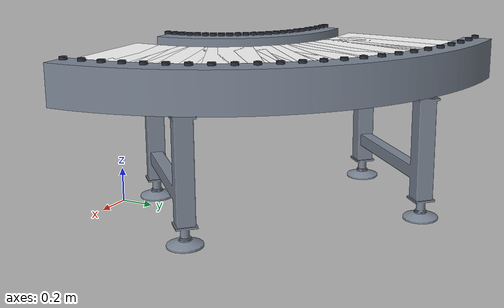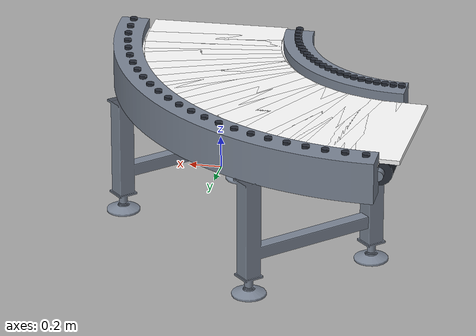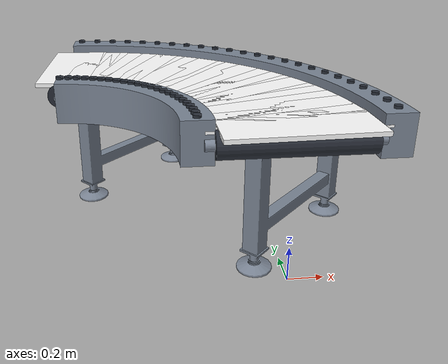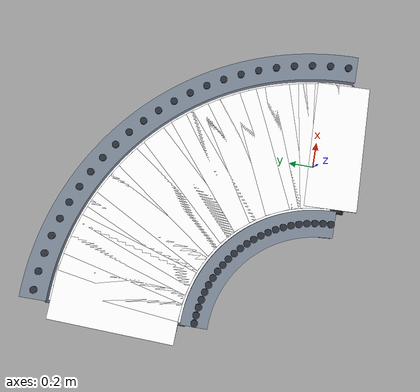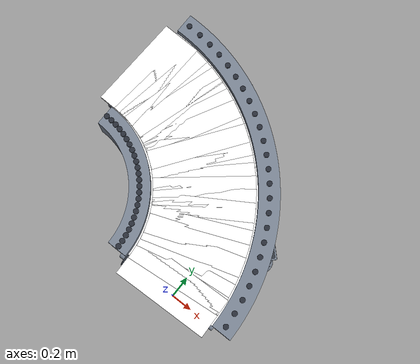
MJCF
<mujoco model="conveyor_curve_left">
  <!-- Generated by generate.mjs. Edit the generator rather than this file. -->
  <compiler angle="radian" meshdir="meshes" texturedir="textures"/>
  <option timestep="0.002"/>

  <asset>
    <material name="conveyor_frame_mat" rgba="0.48 0.52 0.58 1" metallic="0.72" roughness="0.28"/>
    <material name="conveyor_hardware_mat" rgba="0.16 0.18 0.22 1" metallic="0.82" roughness="0.24"/>
    <texture name="belt_color" type="2d" file="rubber-color.png"/>
    <texture name="belt_normal" type="2d" file="rubber-normal.png"/>
    <texture name="belt_roughness" type="2d" file="rubber-roughness.png"/>
    <material name="conveyor_belt_mat" rgba="1 1 1 1" metallic="0" roughness="1">
      <layer role="rgb" texture="belt_color"/>
      <layer role="normal" texture="belt_normal"/>
      <layer role="roughness" texture="belt_roughness"/>
    </material>
    <mesh name="conveyor_curve_inner_rail_visual" file="curve-left-inner-rail.obj" inertia="shell"/>
    <mesh name="conveyor_curve_outer_rail_visual" file="curve-left-outer-rail.obj" inertia="shell"/>
    <mesh name="conveyor_curve_belt_underlay_visual" file="curve-left-belt-underlay.obj" inertia="shell"/>
    <mesh name="conveyor_curve_belt_tile" file="belt-curve-tile.obj" inertia="shell"/>
    <mesh name="conveyor_curve_belt_end_tile" file="belt-curve-end-tile.obj" inertia="shell"/>
    <mesh name="conveyor_curve_support_visual"
          file="visual_3.obj" inertia="shell"/>
  </asset>

  <worldbody>
    <body name="conveyor_curve_left" pos="0 0 0">
      <!-- The incoming connection is centered at the origin and points along local +Y. -->
      <geom name="conveyor_curve_belt_underlay_visual" type="mesh" mesh="conveyor_curve_belt_underlay_visual"
            material="conveyor_belt_mat" group="1" contype="0" conaffinity="0" mass="0"/>
      <geom name="conveyor_curve_inner_rail_visual" type="mesh" mesh="conveyor_curve_inner_rail_visual"
            material="conveyor_frame_mat" group="1" contype="0" conaffinity="0" mass="0"/>
      <geom name="conveyor_curve_outer_rail_visual" type="mesh" mesh="conveyor_curve_outer_rail_visual"
            material="conveyor_frame_mat" group="1" contype="0" conaffinity="0" mass="0"/>
      <!-- Connection frames use local +Y as belt travel for drag-to-attach placement. -->
      <site name="attachment_site" pos="0 0 0.88" xyaxes="1 0 0 0 1 0" size="0.035" group="4"/>
      <site name="attachment_site_outlet" pos="-1.25 1.25 0.88"
            xyaxes="0 1 0 -1 0 0" size="0.035" group="4"/>

      <!-- Driven roller and end caps make each curve interface read as a real conveyor transition. -->
      <geom name="conveyor_curve_inlet_roller" type="cylinder" fromto="-0.405 0 0.81 0.405 0 0.81" size="0.075"
            material="conveyor_hardware_mat" group="1" contype="0" conaffinity="0" mass="0"/>
      <geom name="conveyor_curve_inlet_roller_caps" type="cylinder" fromto="-0.455 0 0.81 0.455 0 0.81" size="0.031"
            material="conveyor_frame_mat" group="1" contype="0" conaffinity="0" mass="0"/>
      <!-- Driven roller and end caps make each curve interface read as a real conveyor transition. -->
      <geom name="conveyor_curve_outlet_roller" type="cylinder" fromto="-1.25 0.8629964 0.81 -1.25 1.6729964 0.81" size="0.075"
            material="conveyor_hardware_mat" group="1" contype="0" conaffinity="0" mass="0"/>
      <geom name="conveyor_curve_outlet_roller_caps" type="cylinder" fromto="-1.25 0.8129964 0.81 -1.25 1.7229964 0.81" size="0.031"
            material="conveyor_frame_mat" group="1" contype="0" conaffinity="0" mass="0"/>

      <!-- Reuse the straight conveyor's finished, adjustable-leg support assembly. -->
      <geom name="conveyor_curve_support_visual" type="mesh" mesh="conveyor_curve_support_visual"
            pos="-0.353391147 0.896608853 0" quat="0.923879533 0 0 0.382683432" material="conveyor_frame_mat"
            group="1" contype="0" conaffinity="0" mass="0"/>

      <!-- Fasteners along both guard rails give the curve the same manufactured detail as the straight modules. -->
      <geom name="conveyor_curve_inner_fastener_0" type="cylinder" pos="-0.487412118 0.024964542 0.955" size="0.022 0.008"
            material="conveyor_hardware_mat" group="1" contype="0" conaffinity="0" mass="0"/>
      <geom name="conveyor_curve_outer_fastener_0" type="cylinder" pos="0.522047116 0.058010816 0.955" size="0.022 0.008"
            material="conveyor_hardware_mat" group="1" contype="0" conaffinity="0" mass="0"/>
      <geom name="conveyor_curve_inner_fastener_1" type="cylinder" pos="-0.490677636 0.074786725 0.955" size="0.022 0.008"
            material="conveyor_hardware_mat" group="1" contype="0" conaffinity="0" mass="0"/>
      <geom name="conveyor_curve_outer_fastener_1" type="cylinder" pos="0.514458938 0.173784037 0.955" size="0.022 0.008"
            material="conveyor_hardware_mat" group="1" contype="0" conaffinity="0" mass="0"/>
      <geom name="conveyor_curve_inner_fastener_2" type="cylinder" pos="-0.49719469 0.12428866 0.955" size="0.022 0.008"
            material="conveyor_hardware_mat" group="1" contype="0" conaffinity="0" mass="0"/>
      <geom name="conveyor_curve_outer_fastener_2" type="cylinder" pos="0.499315076 0.288813088 0.955" size="0.022 0.008"
            material="conveyor_hardware_mat" group="1" contype="0" conaffinity="0" mass="0"/>
      <geom name="conveyor_curve_inner_fastener_3" type="cylinder" pos="-0.506935371 0.173258371 0.955" size="0.022 0.008"
            material="conveyor_hardware_mat" group="1" contype="0" conaffinity="0" mass="0"/>
      <geom name="conveyor_curve_outer_fastener_3" type="cylinder" pos="0.476680378 0.402605397 0.955" size="0.022 0.008"
            material="conveyor_hardware_mat" group="1" contype="0" conaffinity="0" mass="0"/>
      <geom name="conveyor_curve_inner_fastener_4" type="cylinder" pos="-0.519857969 0.221486164 0.955" size="0.022 0.008"
            material="conveyor_hardware_mat" group="1" contype="0" conaffinity="0" mass="0"/>
      <geom name="conveyor_curve_outer_fastener_4" type="cylinder" pos="0.44665177 0.514673688 0.955" size="0.022 0.008"
            material="conveyor_hardware_mat" group="1" contype="0" conaffinity="0" mass="0"/>
      <geom name="conveyor_curve_inner_fastener_5" type="cylinder" pos="-0.535907147 0.268765518 0.955" size="0.022 0.008"
            material="conveyor_hardware_mat" group="1" contype="0" conaffinity="0" mass="0"/>
      <geom name="conveyor_curve_outer_fastener_5" type="cylinder" pos="0.409357839 0.624538067 0.955" size="0.022 0.008"
            material="conveyor_hardware_mat" group="1" contype="0" conaffinity="0" mass="0"/>
      <geom name="conveyor_curve_inner_fastener_6" type="cylinder" pos="-0.555014181 0.314893978 0.955" size="0.022 0.008"
            material="conveyor_hardware_mat" group="1" contype="0" conaffinity="0" mass="0"/>
      <geom name="conveyor_curve_outer_fastener_6" type="cylinder" pos="0.364958282 0.731728078 0.955" size="0.022 0.008"
            material="conveyor_hardware_mat" group="1" contype="0" conaffinity="0" mass="0"/>
      <geom name="conveyor_curve_inner_fastener_7" type="cylinder" pos="-0.57709725 0.359674013 0.955" size="0.022 0.008"
            material="conveyor_hardware_mat" group="1" contype="0" conaffinity="0" mass="0"/>
      <geom name="conveyor_curve_outer_fastener_7" type="cylinder" pos="0.313643227 0.835784717 0.955" size="0.022 0.008"
            material="conveyor_hardware_mat" group="1" contype="0" conaffinity="0" mass="0"/>
      <geom name="conveyor_curve_inner_fastener_8" type="cylinder" pos="-0.602061793 0.402913869 0.955" size="0.022 0.008"
            material="conveyor_hardware_mat" group="1" contype="0" conaffinity="0" mass="0"/>
      <geom name="conveyor_curve_outer_fastener_8" type="cylinder" pos="0.255632411 0.936262398 0.955" size="0.022 0.008"
            material="conveyor_hardware_mat" group="1" contype="0" conaffinity="0" mass="0"/>
      <geom name="conveyor_curve_inner_fastener_9" type="cylinder" pos="-0.629800906 0.444428386 0.955" size="0.022 0.008"
            material="conveyor_hardware_mat" group="1" contype="0" conaffinity="0" mass="0"/>
      <geom name="conveyor_curve_outer_fastener_9" type="cylinder" pos="0.191174246 1.03273086 0.955" size="0.022 0.008"
            material="conveyor_hardware_mat" group="1" contype="0" conaffinity="0" mass="0"/>
      <geom name="conveyor_curve_inner_fastener_10" type="cylinder" pos="-0.660195807 0.484039792 0.955" size="0.022 0.008"
            material="conveyor_hardware_mat" group="1" contype="0" conaffinity="0" mass="0"/>
      <geom name="conveyor_curve_outer_fastener_10" type="cylinder" pos="0.120544751 1.124777009 0.955" size="0.022 0.008"
            material="conveyor_hardware_mat" group="1" contype="0" conaffinity="0" mass="0"/>
      <geom name="conveyor_curve_inner_fastener_11" type="cylinder" pos="-0.69311634 0.521578466 0.955" size="0.022 0.008"
            material="conveyor_hardware_mat" group="1" contype="0" conaffinity="0" mass="0"/>
      <geom name="conveyor_curve_outer_fastener_11" type="cylinder" pos="0.044046373 1.212006691 0.955" size="0.022 0.008"
            material="conveyor_hardware_mat" group="1" contype="0" conaffinity="0" mass="0"/>
      <geom name="conveyor_curve_inner_fastener_12" type="cylinder" pos="-0.728421534 0.55688366 0.955" size="0.022 0.008"
            material="conveyor_hardware_mat" group="1" contype="0" conaffinity="0" mass="0"/>
      <geom name="conveyor_curve_outer_fastener_12" type="cylinder" pos="-0.037993309 1.294046373 0.955" size="0.022 0.008"
            material="conveyor_hardware_mat" group="1" contype="0" conaffinity="0" mass="0"/>
      <geom name="conveyor_curve_inner_fastener_13" type="cylinder" pos="-0.765960208 0.589804193 0.955" size="0.022 0.008"
            material="conveyor_hardware_mat" group="1" contype="0" conaffinity="0" mass="0"/>
      <geom name="conveyor_curve_outer_fastener_13" type="cylinder" pos="-0.125222991 1.370544751 0.955" size="0.022 0.008"
            material="conveyor_hardware_mat" group="1" contype="0" conaffinity="0" mass="0"/>
      <geom name="conveyor_curve_inner_fastener_14" type="cylinder" pos="-0.805571614 0.620199094 0.955" size="0.022 0.008"
            material="conveyor_hardware_mat" group="1" contype="0" conaffinity="0" mass="0"/>
      <geom name="conveyor_curve_outer_fastener_14" type="cylinder" pos="-0.21726914 1.441174246 0.955" size="0.022 0.008"
            material="conveyor_hardware_mat" group="1" contype="0" conaffinity="0" mass="0"/>
      <geom name="conveyor_curve_inner_fastener_15" type="cylinder" pos="-0.847086131 0.647938207 0.955" size="0.022 0.008"
            material="conveyor_hardware_mat" group="1" contype="0" conaffinity="0" mass="0"/>
      <geom name="conveyor_curve_outer_fastener_15" type="cylinder" pos="-0.313737602 1.505632411 0.955" size="0.022 0.008"
            material="conveyor_hardware_mat" group="1" contype="0" conaffinity="0" mass="0"/>
      <geom name="conveyor_curve_inner_fastener_16" type="cylinder" pos="-0.890325987 0.67290275 0.955" size="0.022 0.008"
            material="conveyor_hardware_mat" group="1" contype="0" conaffinity="0" mass="0"/>
      <geom name="conveyor_curve_outer_fastener_16" type="cylinder" pos="-0.414215283 1.563643227 0.955" size="0.022 0.008"
            material="conveyor_hardware_mat" group="1" contype="0" conaffinity="0" mass="0"/>
      <geom name="conveyor_curve_inner_fastener_17" type="cylinder" pos="-0.935106022 0.694985819 0.955" size="0.022 0.008"
            material="conveyor_hardware_mat" group="1" contype="0" conaffinity="0" mass="0"/>
      <geom name="conveyor_curve_outer_fastener_17" type="cylinder" pos="-0.518271922 1.614958282 0.955" size="0.022 0.008"
            material="conveyor_hardware_mat" group="1" contype="0" conaffinity="0" mass="0"/>
      <geom name="conveyor_curve_inner_fastener_18" type="cylinder" pos="-0.981234482 0.714092853 0.955" size="0.022 0.008"
            material="conveyor_hardware_mat" group="1" contype="0" conaffinity="0" mass="0"/>
      <geom name="conveyor_curve_outer_fastener_18" type="cylinder" pos="-0.625461933 1.659357839 0.955" size="0.022 0.008"
            material="conveyor_hardware_mat" group="1" contype="0" conaffinity="0" mass="0"/>
      <geom name="conveyor_curve_inner_fastener_19" type="cylinder" pos="-1.028513836 0.730142031 0.955" size="0.022 0.008"
            material="conveyor_hardware_mat" group="1" contype="0" conaffinity="0" mass="0"/>
      <geom name="conveyor_curve_outer_fastener_19" type="cylinder" pos="-0.735326312 1.69665177 0.955" size="0.022 0.008"
            material="conveyor_hardware_mat" group="1" contype="0" conaffinity="0" mass="0"/>
      <geom name="conveyor_curve_inner_fastener_20" type="cylinder" pos="-1.076741629 0.743064629 0.955" size="0.022 0.008"
            material="conveyor_hardware_mat" group="1" contype="0" conaffinity="0" mass="0"/>
      <geom name="conveyor_curve_outer_fastener_20" type="cylinder" pos="-0.847394603 1.726680378 0.955" size="0.022 0.008"
            material="conveyor_hardware_mat" group="1" contype="0" conaffinity="0" mass="0"/>
      <geom name="conveyor_curve_inner_fastener_21" type="cylinder" pos="-1.12571134 0.75280531 0.955" size="0.022 0.008"
            material="conveyor_hardware_mat" group="1" contype="0" conaffinity="0" mass="0"/>
      <geom name="conveyor_curve_outer_fastener_21" type="cylinder" pos="-0.961186912 1.749315076 0.955" size="0.022 0.008"
            material="conveyor_hardware_mat" group="1" contype="0" conaffinity="0" mass="0"/>
      <geom name="conveyor_curve_inner_fastener_22" type="cylinder" pos="-1.175213275 0.759322364 0.955" size="0.022 0.008"
            material="conveyor_hardware_mat" group="1" contype="0" conaffinity="0" mass="0"/>
      <geom name="conveyor_curve_outer_fastener_22" type="cylinder" pos="-1.076215963 1.764458938 0.955" size="0.022 0.008"
            material="conveyor_hardware_mat" group="1" contype="0" conaffinity="0" mass="0"/>
      <geom name="conveyor_curve_inner_fastener_23" type="cylinder" pos="-1.225035458 0.762587882 0.955" size="0.022 0.008"
            material="conveyor_hardware_mat" group="1" contype="0" conaffinity="0" mass="0"/>
      <geom name="conveyor_curve_outer_fastener_23" type="cylinder" pos="-1.191989184 1.772047116 0.955" size="0.022 0.008"
            material="conveyor_hardware_mat" group="1" contype="0" conaffinity="0" mass="0"/>

      <!-- Overlapping tangent boxes approximate stable curved frame and rail collision. -->
      <geom name="conveyor_curve_frame_collision_0" type="box"
            pos="0.017317499 0.041487679 0.35" quat="0.999866138 0 0 0.016361732"
            size="0.52 0.085235363 0.35" group="3" rgba="0 0 0 0" contype="1" conaffinity="0" density="27.0073"/>
      <geom name="conveyor_curve_inner_rail_collision_0" type="box"
            pos="-0.492409441 0.024800947 0.82" quat="0.999866138 0 0 0.016361732"
            size="0.09 0.085235363 0.12" group="3" rgba="0 0 0 0" contype="1" conaffinity="0" density="27.0073"/>
      <geom name="conveyor_curve_outer_rail_collision_0" type="box"
            pos="0.527044438 0.058174411 0.82" quat="0.999866138 0 0 0.016361732"
            size="0.09 0.085235363 0.12" group="3" rgba="0 0 0 0" contype="1" conaffinity="0" density="27.0073"/>
      <geom name="conveyor_curve_frame_collision_1" type="box"
            pos="0.011890651 0.124285381 0.35" quat="0.998795456 0 0 0.049067674"
            size="0.52 0.085235363 0.35" group="3" rgba="0 0 0 0" contype="1" conaffinity="0" density="27.0073"/>
      <geom name="conveyor_curve_inner_rail_collision_1" type="box"
            pos="-0.49565356 0.07429664 0.82" quat="0.998795456 0 0 0.049067674"
            size="0.09 0.085235363 0.12" group="3" rgba="0 0 0 0" contype="1" conaffinity="0" density="27.0073"/>
      <geom name="conveyor_curve_outer_rail_collision_1" type="box"
            pos="0.519434861 0.174274123 0.82" quat="0.998795456 0 0 0.049067674"
            size="0.09 0.085235363 0.12" group="3" rgba="0 0 0 0" contype="1" conaffinity="0" density="27.0073"/>
      <geom name="conveyor_curve_frame_collision_2" type="box"
            pos="0.001060193 0.206550874 0.35" quat="0.996655239 0 0 0.081721074"
            size="0.52 0.085235363 0.35" group="3" rgba="0 0 0 0" contype="1" conaffinity="0" density="27.0073"/>
      <geom name="conveyor_curve_inner_rail_collision_2" type="box"
            pos="-0.502127906 0.123474182 0.82" quat="0.996655239 0 0 0.081721074"
            size="0.09 0.085235363 0.12" group="3" rgba="0 0 0 0" contype="1" conaffinity="0" density="27.0073"/>
      <geom name="conveyor_curve_outer_rail_collision_2" type="box"
            pos="0.504248293 0.289627565 0.82" quat="0.996655239 0 0 0.081721074"
            size="0.09 0.085235363 0.12" group="3" rgba="0 0 0 0" contype="1" conaffinity="0" density="27.0073"/>
      <geom name="conveyor_curve_frame_collision_3" type="box"
            pos="-0.015127496 0.287931884 0.35" quat="0.993447779 0 0 0.114286965"
            size="0.52 0.085235363 0.35" group="3" rgba="0 0 0 0" contype="1" conaffinity="0" density="27.0073"/>
      <geom name="conveyor_curve_inner_rail_collision_3" type="box"
            pos="-0.511804756 0.17212299 0.82" quat="0.993447779 0 0 0.114286965"
            size="0.09 0.085235363 0.12" group="3" rgba="0 0 0 0" contype="1" conaffinity="0" density="27.0073"/>
      <geom name="conveyor_curve_outer_rail_collision_3" type="box"
            pos="0.481549763 0.403740778 0.82" quat="0.993447779 0 0 0.114286965"
            size="0.09 0.085235363 0.12" group="3" rgba="0 0 0 0" contype="1" conaffinity="0" density="27.0073"/>
      <geom name="conveyor_curve_frame_collision_4" type="box"
            pos="-0.036603099 0.368079926 0.35" quat="0.98917651 0 0 0.146730474"
            size="0.52 0.085235363 0.35" group="3" rgba="0 0 0 0" contype="1" conaffinity="0" density="27.0073"/>
      <geom name="conveyor_curve_inner_rail_collision_4" type="box"
            pos="-0.524642671 0.22003474 0.82" quat="0.98917651 0 0 0.146730474"
            size="0.09 0.085235363 0.12" group="3" rgba="0 0 0 0" contype="1" conaffinity="0" density="27.0073"/>
      <geom name="conveyor_curve_outer_rail_collision_4" type="box"
            pos="0.451436472 0.516125111 0.82" quat="0.98917651 0 0 0.146730474"
            size="0.09 0.085235363 0.12" group="3" rgba="0 0 0 0" contype="1" conaffinity="0" density="27.0073"/>
      <geom name="conveyor_curve_frame_collision_5" type="box"
            pos="-0.063274654 0.446651793 0.35" quat="0.983846006 0 0 0.179016861"
            size="0.52 0.085235363 0.35" group="3" rgba="0 0 0 0" contype="1" conaffinity="0" density="27.0073"/>
      <geom name="conveyor_curve_inner_rail_collision_5" type="box"
            pos="-0.540586677 0.267004268 0.82" quat="0.983846006 0 0 0.179016861"
            size="0.09 0.085235363 0.12" group="3" rgba="0 0 0 0" contype="1" conaffinity="0" density="27.0073"/>
      <geom name="conveyor_curve_outer_rail_collision_5" type="box"
            pos="0.414037369 0.626299317 0.82" quat="0.983846006 0 0 0.179016861"
            size="0.09 0.085235363 0.12" group="3" rgba="0 0 0 0" contype="1" conaffinity="0" density="27.0073"/>
      <geom name="conveyor_curve_frame_collision_6" type="box"
            pos="-0.095027949 0.523311028 0.35" quat="0.977461975 0 0 0.211111552"
            size="0.52 0.085235363 0.35" group="3" rgba="0 0 0 0" contype="1" conaffinity="0" density="27.0073"/>
      <geom name="conveyor_curve_inner_rail_collision_6" type="box"
            pos="-0.5595685 0.312830443 0.82" quat="0.977461975 0 0 0.211111552"
            size="0.09 0.085235363 0.12" group="3" rgba="0 0 0 0" contype="1" conaffinity="0" density="27.0073"/>
      <geom name="conveyor_curve_outer_rail_collision_6" type="box"
            pos="0.369512602 0.733791613 0.82" quat="0.977461975 0 0 0.211111552"
            size="0.09 0.085235363 0.12" group="3" rgba="0 0 0 0" contype="1" conaffinity="0" density="27.0073"/>
      <geom name="conveyor_curve_frame_collision_7" type="box"
            pos="-0.131727012 0.597729365 0.35" quat="0.970031253 0 0 0.24298018"
            size="0.52 0.085235363 0.35" group="3" rgba="0 0 0 0" contype="1" conaffinity="0" density="27.0073"/>
      <geom name="conveyor_curve_inner_rail_collision_7" type="box"
            pos="-0.581506857 0.357317029 0.82" quat="0.970031253 0 0 0.24298018"
            size="0.09 0.085235363 0.12" group="3" rgba="0 0 0 0" contype="1" conaffinity="0" density="27.0073"/>
      <geom name="conveyor_curve_outer_rail_collision_7" type="box"
            pos="0.318052833 0.838141701 0.82" quat="0.970031253 0 0 0.24298018"
            size="0.09 0.085235363 0.12" group="3" rgba="0 0 0 0" contype="1" conaffinity="0" density="27.0073"/>
      <geom name="conveyor_curve_frame_collision_8" type="box"
            pos="-0.173214691 0.669588134 0.35" quat="0.961561798 0 0 0.274588618"
            size="0.52 0.085235363 0.35" group="3" rgba="0 0 0 0" contype="1" conaffinity="0" density="27.0073"/>
      <geom name="conveyor_curve_inner_rail_collision_8" type="box"
            pos="-0.606307804 0.40027353 0.82" quat="0.961561798 0 0 0.274588618"
            size="0.09 0.085235363 0.12" group="3" rgba="0 0 0 0" contype="1" conaffinity="0" density="27.0073"/>
      <geom name="conveyor_curve_outer_rail_collision_8" type="box"
            pos="0.259878422 0.938902737 0.82" quat="0.961561798 0 0 0.274588618"
            size="0.09 0.085235363 0.12" group="3" rgba="0 0 0 0" contype="1" conaffinity="0" density="27.0073"/>
      <geom name="conveyor_curve_frame_collision_9" type="box"
            pos="-0.21931333 0.738579623 0.35" quat="0.952062678 0 0 0.30590302"
            size="0.52 0.085235363 0.35" group="3" rgba="0 0 0 0" contype="1" conaffinity="0" density="27.0073"/>
      <geom name="conveyor_curve_inner_rail_collision_9" type="box"
            pos="-0.633865139 0.441515997 0.82" quat="0.952062678 0 0 0.30590302"
            size="0.09 0.085235363 0.12" group="3" rgba="0 0 0 0" contype="1" conaffinity="0" density="27.0073"/>
      <geom name="conveyor_curve_outer_rail_collision_9" type="box"
            pos="0.195238479 1.035643248 0.82" quat="0.952062678 0 0 0.30590302"
            size="0.09 0.085235363 0.12" group="3" rgba="0 0 0 0" contype="1" conaffinity="0" density="27.0073"/>
      <geom name="conveyor_curve_frame_collision_10" type="box"
            pos="-0.269825528 0.804408401 0.35" quat="0.941544065 0 0 0.336889853"
            size="0.52 0.085235363 0.35" group="3" rgba="0 0 0 0" contype="1" conaffinity="0" density="27.0073"/>
      <geom name="conveyor_curve_inner_rail_collision_10" type="box"
            pos="-0.664060859 0.480867826 0.82" quat="0.941544065 0 0 0.336889853"
            size="0.09 0.085235363 0.12" group="3" rgba="0 0 0 0" contype="1" conaffinity="0" density="27.0073"/>
      <geom name="conveyor_curve_outer_rail_collision_10" type="box"
            pos="0.124409803 1.127948975 0.82" quat="0.941544065 0 0 0.336889853"
            size="0.09 0.085235363 0.12" group="3" rgba="0 0 0 0" contype="1" conaffinity="0" density="27.0073"/>
      <geom name="conveyor_curve_frame_collision_11" type="box"
            pos="-0.324534983 0.866792578 0.35" quat="0.930017224 0 0 0.367515937"
            size="0.52 0.085235363 0.35" group="3" rgba="0 0 0 0" contype="1" conaffinity="0" density="27.0073"/>
      <geom name="conveyor_curve_inner_rail_collision_11" type="box"
            pos="-0.69676566 0.518160504 0.82" quat="0.930017224 0 0 0.367515937"
            size="0.09 0.085235363 0.12" group="3" rgba="0 0 0 0" contype="1" conaffinity="0" density="27.0073"/>
      <geom name="conveyor_curve_outer_rail_collision_11" type="box"
            pos="0.047695694 1.215424652 0.82" quat="0.930017224 0 0 0.367515937"
            size="0.09 0.085235363 0.12" group="3" rgba="0 0 0 0" contype="1" conaffinity="0" density="27.0073"/>
      <geom name="conveyor_curve_frame_collision_12" type="box"
            pos="-0.383207422 0.925465017 0.35" quat="0.917494496 0 0 0.397748475"
            size="0.52 0.085235363 0.35" group="3" rgba="0 0 0 0" contype="1" conaffinity="0" density="27.0073"/>
      <geom name="conveyor_curve_inner_rail_collision_12" type="box"
            pos="-0.731839496 0.55323434 0.82" quat="0.917494496 0 0 0.397748475"
            size="0.09 0.085235363 0.12" group="3" rgba="0 0 0 0" contype="1" conaffinity="0" density="27.0073"/>
      <geom name="conveyor_curve_outer_rail_collision_12" type="box"
            pos="-0.034575348 1.297695694 0.82" quat="0.917494496 0 0 0.397748475"
            size="0.09 0.085235363 0.12" group="3" rgba="0 0 0 0" contype="1" conaffinity="0" density="27.0073"/>
      <geom name="conveyor_curve_frame_collision_13" type="box"
            pos="-0.445591599 0.980174472 0.35" quat="0.903989293 0 0 0.427555093"
            size="0.52 0.085235363 0.35" group="3" rgba="0 0 0 0" contype="1" conaffinity="0" density="27.0073"/>
      <geom name="conveyor_curve_inner_rail_collision_13" type="box"
            pos="-0.769132174 0.585939141 0.82" quat="0.903989293 0 0 0.427555093"
            size="0.09 0.085235363 0.12" group="3" rgba="0 0 0 0" contype="1" conaffinity="0" density="27.0073"/>
      <geom name="conveyor_curve_outer_rail_collision_13" type="box"
            pos="-0.122051025 1.374409803 0.82" quat="0.903989293 0 0 0.427555093"
            size="0.09 0.085235363 0.12" group="3" rgba="0 0 0 0" contype="1" conaffinity="0" density="27.0073"/>
      <geom name="conveyor_curve_frame_collision_14" type="box"
            pos="-0.511420377 1.03068667 0.35" quat="0.889516075 0 0 0.456903876"
            size="0.52 0.085235363 0.35" group="3" rgba="0 0 0 0" contype="1" conaffinity="0" density="27.0073"/>
      <geom name="conveyor_curve_inner_rail_collision_14" type="box"
            pos="-0.808484003 0.616134861 0.82" quat="0.889516075 0 0 0.456903876"
            size="0.09 0.085235363 0.12" group="3" rgba="0 0 0 0" contype="1" conaffinity="0" density="27.0073"/>
      <geom name="conveyor_curve_outer_rail_collision_14" type="box"
            pos="-0.214356752 1.445238479 0.82" quat="0.889516075 0 0 0.456903876"
            size="0.09 0.085235363 0.12" group="3" rgba="0 0 0 0" contype="1" conaffinity="0" density="27.0073"/>
      <geom name="conveyor_curve_frame_collision_15" type="box"
            pos="-0.580411866 1.076785309 0.35" quat="0.874090342 0 0 0.485763394"
            size="0.52 0.085235363 0.35" group="3" rgba="0 0 0 0" contype="1" conaffinity="0" density="27.0073"/>
      <geom name="conveyor_curve_inner_rail_collision_15" type="box"
            pos="-0.84972647 0.643692196 0.82" quat="0.874090342 0 0 0.485763394"
            size="0.09 0.085235363 0.12" group="3" rgba="0 0 0 0" contype="1" conaffinity="0" density="27.0073"/>
      <geom name="conveyor_curve_outer_rail_collision_15" type="box"
            pos="-0.311097263 1.509878422 0.82" quat="0.874090342 0 0 0.485763394"
            size="0.09 0.085235363 0.12" group="3" rgba="0 0 0 0" contype="1" conaffinity="0" density="27.0073"/>
      <geom name="conveyor_curve_frame_collision_16" type="box"
            pos="-0.652270635 1.118272988 0.35" quat="0.85772861 0 0 0.514102744"
            size="0.52 0.085235363 0.35" group="3" rgba="0 0 0 0" contype="1" conaffinity="0" density="27.0073"/>
      <geom name="conveyor_curve_inner_rail_collision_16" type="box"
            pos="-0.892682971 0.668493143 0.82" quat="0.85772861 0 0 0.514102744"
            size="0.09 0.085235363 0.12" group="3" rgba="0 0 0 0" contype="1" conaffinity="0" density="27.0073"/>
      <geom name="conveyor_curve_outer_rail_collision_16" type="box"
            pos="-0.411858299 1.568052833 0.82" quat="0.85772861 0 0 0.514102744"
            size="0.09 0.085235363 0.12" group="3" rgba="0 0 0 0" contype="1" conaffinity="0" density="27.0073"/>
      <geom name="conveyor_curve_frame_collision_17" type="box"
            pos="-0.726688972 1.154972051 0.35" quat="0.840448401 0 0 0.541891581"
            size="0.52 0.085235363 0.35" group="3" rgba="0 0 0 0" contype="1" conaffinity="0" density="27.0073"/>
      <geom name="conveyor_curve_inner_rail_collision_17" type="box"
            pos="-0.937169557 0.6904315 0.82" quat="0.840448401 0 0 0.541891581"
            size="0.09 0.085235363 0.12" group="3" rgba="0 0 0 0" contype="1" conaffinity="0" density="27.0073"/>
      <geom name="conveyor_curve_outer_rail_collision_17" type="box"
            pos="-0.516208387 1.619512602 0.82" quat="0.840448401 0 0 0.541891581"
            size="0.09 0.085235363 0.12" group="3" rgba="0 0 0 0" contype="1" conaffinity="0" density="27.0073"/>
      <geom name="conveyor_curve_frame_collision_18" type="box"
            pos="-0.803348207 1.186725346 0.35" quat="0.822268219 0 0 0.569100146"
            size="0.52 0.085235363 0.35" group="3" rgba="0 0 0 0" contype="1" conaffinity="0" density="27.0073"/>
      <geom name="conveyor_curve_inner_rail_collision_18" type="box"
            pos="-0.982995732 0.709413323 0.82" quat="0.822268219 0 0 0.569100146"
            size="0.09 0.085235363 0.12" group="3" rgba="0 0 0 0" contype="1" conaffinity="0" density="27.0073"/>
      <geom name="conveyor_curve_outer_rail_collision_18" type="box"
            pos="-0.623700683 1.664037369 0.82" quat="0.822268219 0 0 0.569100146"
            size="0.09 0.085235363 0.12" group="3" rgba="0 0 0 0" contype="1" conaffinity="0" density="27.0073"/>
      <geom name="conveyor_curve_frame_collision_19" type="box"
            pos="-0.881920074 1.213396901 0.35" quat="0.803207531 0 0 0.595699304"
            size="0.52 0.085235363 0.35" group="3" rgba="0 0 0 0" contype="1" conaffinity="0" density="27.0073"/>
      <geom name="conveyor_curve_inner_rail_collision_19" type="box"
            pos="-1.02996526 0.725357329 0.82" quat="0.803207531 0 0 0.595699304"
            size="0.09 0.085235363 0.12" group="3" rgba="0 0 0 0" contype="1" conaffinity="0" density="27.0073"/>
      <geom name="conveyor_curve_outer_rail_collision_19" type="box"
            pos="-0.733874889 1.701436472 0.82" quat="0.803207531 0 0 0.595699304"
            size="0.09 0.085235363 0.12" group="3" rgba="0 0 0 0" contype="1" conaffinity="0" density="27.0073"/>
      <geom name="conveyor_curve_frame_collision_20" type="box"
            pos="-0.962068116 1.234872504 0.35" quat="0.783286749 0 0 0.621660573"
            size="0.52 0.085235363 0.35" group="3" rgba="0 0 0 0" contype="1" conaffinity="0" density="27.0073"/>
      <geom name="conveyor_curve_inner_rail_collision_20" type="box"
            pos="-1.07787701 0.738195244 0.82" quat="0.783286749 0 0 0.621660573"
            size="0.09 0.085235363 0.12" group="3" rgba="0 0 0 0" contype="1" conaffinity="0" density="27.0073"/>
      <geom name="conveyor_curve_outer_rail_collision_20" type="box"
            pos="-0.846259222 1.731549763 0.82" quat="0.783286749 0 0 0.621660573"
            size="0.09 0.085235363 0.12" group="3" rgba="0 0 0 0" contype="1" conaffinity="0" density="27.0073"/>
      <geom name="conveyor_curve_frame_collision_21" type="box"
            pos="-1.043449126 1.251060193 0.35" quat="0.762527204 0 0 0.646956153"
            size="0.52 0.085235363 0.35" group="3" rgba="0 0 0 0" contype="1" conaffinity="0" density="27.0073"/>
      <geom name="conveyor_curve_inner_rail_collision_21" type="box"
            pos="-1.126525818 0.747872094 0.82" quat="0.762527204 0 0 0.646956153"
            size="0.09 0.085235363 0.12" group="3" rgba="0 0 0 0" contype="1" conaffinity="0" density="27.0073"/>
      <geom name="conveyor_curve_outer_rail_collision_21" type="box"
            pos="-0.960372435 1.754248293 0.82" quat="0.762527204 0 0 0.646956153"
            size="0.09 0.085235363 0.12" group="3" rgba="0 0 0 0" contype="1" conaffinity="0" density="27.0073"/>
      <geom name="conveyor_curve_frame_collision_22" type="box"
            pos="-1.125714619 1.261890651 0.35" quat="0.740951125 0 0 0.671558955"
            size="0.52 0.085235363 0.35" group="3" rgba="0 0 0 0" contype="1" conaffinity="0" density="27.0073"/>
      <geom name="conveyor_curve_inner_rail_collision_22" type="box"
            pos="-1.17570336 0.75434644 0.82" quat="0.740951125 0 0 0.671558955"
            size="0.09 0.085235363 0.12" group="3" rgba="0 0 0 0" contype="1" conaffinity="0" density="27.0073"/>
      <geom name="conveyor_curve_outer_rail_collision_22" type="box"
            pos="-1.075725877 1.769434861 0.82" quat="0.740951125 0 0 0.671558955"
            size="0.09 0.085235363 0.12" group="3" rgba="0 0 0 0" contype="1" conaffinity="0" density="27.0073"/>
      <geom name="conveyor_curve_frame_collision_23" type="box"
            pos="-1.208512321 1.267317499 0.35" quat="0.718581618 0 0 0.695442635"
            size="0.52 0.085235363 0.35" group="3" rgba="0 0 0 0" contype="1" conaffinity="0" density="27.0073"/>
      <geom name="conveyor_curve_inner_rail_collision_23" type="box"
            pos="-1.225199053 0.757590559 0.82" quat="0.718581618 0 0 0.695442635"
            size="0.09 0.085235363 0.12" group="3" rgba="0 0 0 0" contype="1" conaffinity="0" density="27.0073"/>
      <geom name="conveyor_curve_outer_rail_collision_23" type="box"
            pos="-1.191825589 1.777044438 0.82" quat="0.718581618 0 0 0.695442635"
            size="0.09 0.085235363 0.12" group="3" rgba="0 0 0 0" contype="1" conaffinity="0" density="27.0073"/>

      <!-- Tangent-aligned moving contact tiles steer objects continuously through the turn. -->
      <body name="conveyor_belt_segment_0" pos="0.017317499 0.041487679 0.88" quat="0.999866138 0 0 0.016361732">
        <joint name="conveyor_belt_segment_0_slide" type="slide" axis="0 1 0"
               range="-0.05 0.05" limited="false" damping="0"/>
        <geom name="conveyor_belt_segment_0_contact" type="box"
              size="0.39 0.169211827 0.0125" group="3" contype="1" conaffinity="2"
              rgba="0 0 0 0" condim="6" friction="1.8 0.08 0.02"
              solimp="0.9 0.98 0.0001" solref="0.002 1" mass="0.000540146"/>
        <!-- The visible tread shares this moving MuJoCo body with its contact tile. -->
        <geom name="conveyor_belt_segment_0_visual" type="mesh" mesh="conveyor_curve_belt_end_tile"
              material="conveyor_belt_mat" group="1" contype="0" conaffinity="0" mass="0"/>
      </body>
      <body name="conveyor_belt_segment_1" pos="0.011890651 0.124285381 0.88" quat="0.998795456 0 0 0.049067674">
        <joint name="conveyor_belt_segment_1_slide" type="slide" axis="0 1 0"
               range="-0.05 0.05" limited="false" damping="0"/>
        <geom name="conveyor_belt_segment_1_contact" type="box"
              size="0.39 0.079211827 0.0125" group="3" contype="1" conaffinity="2"
              rgba="0 0 0 0" condim="6" friction="1.8 0.08 0.02"
              solimp="0.9 0.98 0.0001" solref="0.002 1" mass="0.000540146"/>
        <!-- The visible tread shares this moving MuJoCo body with its contact tile. -->
        <geom name="conveyor_belt_segment_1_visual" type="mesh" mesh="conveyor_curve_belt_tile"
              material="conveyor_belt_mat" group="1" contype="0" conaffinity="0" mass="0"/>
      </body>
      <body name="conveyor_belt_segment_2" pos="0.001060193 0.206550874 0.88" quat="0.996655239 0 0 0.081721074">
        <joint name="conveyor_belt_segment_2_slide" type="slide" axis="0 1 0"
               range="-0.05 0.05" limited="false" damping="0"/>
        <geom name="conveyor_belt_segment_2_contact" type="box"
              size="0.39 0.079211827 0.0125" group="3" contype="1" conaffinity="2"
              rgba="0 0 0 0" condim="6" friction="1.8 0.08 0.02"
              solimp="0.9 0.98 0.0001" solref="0.002 1" mass="0.000540146"/>
        <!-- The visible tread shares this moving MuJoCo body with its contact tile. -->
        <geom name="conveyor_belt_segment_2_visual" type="mesh" mesh="conveyor_curve_belt_tile"
              material="conveyor_belt_mat" group="1" contype="0" conaffinity="0" mass="0"/>
      </body>
      <body name="conveyor_belt_segment_3" pos="-0.015127496 0.287931884 0.88" quat="0.993447779 0 0 0.114286965">
        <joint name="conveyor_belt_segment_3_slide" type="slide" axis="0 1 0"
               range="-0.05 0.05" limited="false" damping="0"/>
        <geom name="conveyor_belt_segment_3_contact" type="box"
              size="0.39 0.079211827 0.0125" group="3" contype="1" conaffinity="2"
              rgba="0 0 0 0" condim="6" friction="1.8 0.08 0.02"
              solimp="0.9 0.98 0.0001" solref="0.002 1" mass="0.000540146"/>
        <!-- The visible tread shares this moving MuJoCo body with its contact tile. -->
        <geom name="conveyor_belt_segment_3_visual" type="mesh" mesh="conveyor_curve_belt_tile"
              material="conveyor_belt_mat" group="1" contype="0" conaffinity="0" mass="0"/>
      </body>
      <body name="conveyor_belt_segment_4" pos="-0.036603099 0.368079926 0.88" quat="0.98917651 0 0 0.146730474">
        <joint name="conveyor_belt_segment_4_slide" type="slide" axis="0 1 0"
               range="-0.05 0.05" limited="false" damping="0"/>
        <geom name="conveyor_belt_segment_4_contact" type="box"
              size="0.39 0.079211827 0.0125" group="3" contype="1" conaffinity="2"
              rgba="0 0 0 0" condim="6" friction="1.8 0.08 0.02"
              solimp="0.9 0.98 0.0001" solref="0.002 1" mass="0.000540146"/>
        <!-- The visible tread shares this moving MuJoCo body with its contact tile. -->
        <geom name="conveyor_belt_segment_4_visual" type="mesh" mesh="conveyor_curve_belt_tile"
              material="conveyor_belt_mat" group="1" contype="0" conaffinity="0" mass="0"/>
      </body>
      <body name="conveyor_belt_segment_5" pos="-0.063274654 0.446651793 0.88" quat="0.983846006 0 0 0.179016861">
        <joint name="conveyor_belt_segment_5_slide" type="slide" axis="0 1 0"
               range="-0.05 0.05" limited="false" damping="0"/>
        <geom name="conveyor_belt_segment_5_contact" type="box"
              size="0.39 0.079211827 0.0125" group="3" contype="1" conaffinity="2"
              rgba="0 0 0 0" condim="6" friction="1.8 0.08 0.02"
              solimp="0.9 0.98 0.0001" solref="0.002 1" mass="0.000540146"/>
        <!-- The visible tread shares this moving MuJoCo body with its contact tile. -->
        <geom name="conveyor_belt_segment_5_visual" type="mesh" mesh="conveyor_curve_belt_tile"
              material="conveyor_belt_mat" group="1" contype="0" conaffinity="0" mass="0"/>
      </body>
      <body name="conveyor_belt_segment_6" pos="-0.095027949 0.523311028 0.88" quat="0.977461975 0 0 0.211111552">
        <joint name="conveyor_belt_segment_6_slide" type="slide" axis="0 1 0"
               range="-0.05 0.05" limited="false" damping="0"/>
        <geom name="conveyor_belt_segment_6_contact" type="box"
              size="0.39 0.079211827 0.0125" group="3" contype="1" conaffinity="2"
              rgba="0 0 0 0" condim="6" friction="1.8 0.08 0.02"
              solimp="0.9 0.98 0.0001" solref="0.002 1" mass="0.000540146"/>
        <!-- The visible tread shares this moving MuJoCo body with its contact tile. -->
        <geom name="conveyor_belt_segment_6_visual" type="mesh" mesh="conveyor_curve_belt_tile"
              material="conveyor_belt_mat" group="1" contype="0" conaffinity="0" mass="0"/>
      </body>
      <body name="conveyor_belt_segment_7" pos="-0.131727012 0.597729365 0.88" quat="0.970031253 0 0 0.24298018">
        <joint name="conveyor_belt_segment_7_slide" type="slide" axis="0 1 0"
               range="-0.05 0.05" limited="false" damping="0"/>
        <geom name="conveyor_belt_segment_7_contact" type="box"
              size="0.39 0.079211827 0.0125" group="3" contype="1" conaffinity="2"
              rgba="0 0 0 0" condim="6" friction="1.8 0.08 0.02"
              solimp="0.9 0.98 0.0001" solref="0.002 1" mass="0.000540146"/>
        <!-- The visible tread shares this moving MuJoCo body with its contact tile. -->
        <geom name="conveyor_belt_segment_7_visual" type="mesh" mesh="conveyor_curve_belt_tile"
              material="conveyor_belt_mat" group="1" contype="0" conaffinity="0" mass="0"/>
      </body>
      <body name="conveyor_belt_segment_8" pos="-0.173214691 0.669588134 0.88" quat="0.961561798 0 0 0.274588618">
        <joint name="conveyor_belt_segment_8_slide" type="slide" axis="0 1 0"
               range="-0.05 0.05" limited="false" damping="0"/>
        <geom name="conveyor_belt_segment_8_contact" type="box"
              size="0.39 0.079211827 0.0125" group="3" contype="1" conaffinity="2"
              rgba="0 0 0 0" condim="6" friction="1.8 0.08 0.02"
              solimp="0.9 0.98 0.0001" solref="0.002 1" mass="0.000540146"/>
        <!-- The visible tread shares this moving MuJoCo body with its contact tile. -->
        <geom name="conveyor_belt_segment_8_visual" type="mesh" mesh="conveyor_curve_belt_tile"
              material="conveyor_belt_mat" group="1" contype="0" conaffinity="0" mass="0"/>
      </body>
      <body name="conveyor_belt_segment_9" pos="-0.21931333 0.738579623 0.88" quat="0.952062678 0 0 0.30590302">
        <joint name="conveyor_belt_segment_9_slide" type="slide" axis="0 1 0"
               range="-0.05 0.05" limited="false" damping="0"/>
        <geom name="conveyor_belt_segment_9_contact" type="box"
              size="0.39 0.079211827 0.0125" group="3" contype="1" conaffinity="2"
              rgba="0 0 0 0" condim="6" friction="1.8 0.08 0.02"
              solimp="0.9 0.98 0.0001" solref="0.002 1" mass="0.000540146"/>
        <!-- The visible tread shares this moving MuJoCo body with its contact tile. -->
        <geom name="conveyor_belt_segment_9_visual" type="mesh" mesh="conveyor_curve_belt_tile"
              material="conveyor_belt_mat" group="1" contype="0" conaffinity="0" mass="0"/>
      </body>
      <body name="conveyor_belt_segment_10" pos="-0.269825528 0.804408401 0.88" quat="0.941544065 0 0 0.336889853">
        <joint name="conveyor_belt_segment_10_slide" type="slide" axis="0 1 0"
               range="-0.05 0.05" limited="false" damping="0"/>
        <geom name="conveyor_belt_segment_10_contact" type="box"
              size="0.39 0.079211827 0.0125" group="3" contype="1" conaffinity="2"
              rgba="0 0 0 0" condim="6" friction="1.8 0.08 0.02"
              solimp="0.9 0.98 0.0001" solref="0.002 1" mass="0.000540146"/>
        <!-- The visible tread shares this moving MuJoCo body with its contact tile. -->
        <geom name="conveyor_belt_segment_10_visual" type="mesh" mesh="conveyor_curve_belt_tile"
              material="conveyor_belt_mat" group="1" contype="0" conaffinity="0" mass="0"/>
      </body>
      <body name="conveyor_belt_segment_11" pos="-0.324534983 0.866792578 0.88" quat="0.930017224 0 0 0.367515937">
        <joint name="conveyor_belt_segment_11_slide" type="slide" axis="0 1 0"
               range="-0.05 0.05" limited="false" damping="0"/>
        <geom name="conveyor_belt_segment_11_contact" type="box"
              size="0.39 0.079211827 0.0125" group="3" contype="1" conaffinity="2"
              rgba="0 0 0 0" condim="6" friction="1.8 0.08 0.02"
              solimp="0.9 0.98 0.0001" solref="0.002 1" mass="0.000540146"/>
        <!-- The visible tread shares this moving MuJoCo body with its contact tile. -->
        <geom name="conveyor_belt_segment_11_visual" type="mesh" mesh="conveyor_curve_belt_tile"
              material="conveyor_belt_mat" group="1" contype="0" conaffinity="0" mass="0"/>
      </body>
      <body name="conveyor_belt_segment_12" pos="-0.383207422 0.925465017 0.88" quat="0.917494496 0 0 0.397748475">
        <joint name="conveyor_belt_segment_12_slide" type="slide" axis="0 1 0"
               range="-0.05 0.05" limited="false" damping="0"/>
        <geom name="conveyor_belt_segment_12_contact" type="box"
              size="0.39 0.079211827 0.0125" group="3" contype="1" conaffinity="2"
              rgba="0 0 0 0" condim="6" friction="1.8 0.08 0.02"
              solimp="0.9 0.98 0.0001" solref="0.002 1" mass="0.000540146"/>
        <!-- The visible tread shares this moving MuJoCo body with its contact tile. -->
        <geom name="conveyor_belt_segment_12_visual" type="mesh" mesh="conveyor_curve_belt_tile"
              material="conveyor_belt_mat" group="1" contype="0" conaffinity="0" mass="0"/>
      </body>
      <body name="conveyor_belt_segment_13" pos="-0.445591599 0.980174472 0.88" quat="0.903989293 0 0 0.427555093">
        <joint name="conveyor_belt_segment_13_slide" type="slide" axis="0 1 0"
               range="-0.05 0.05" limited="false" damping="0"/>
        <geom name="conveyor_belt_segment_13_contact" type="box"
              size="0.39 0.079211827 0.0125" group="3" contype="1" conaffinity="2"
              rgba="0 0 0 0" condim="6" friction="1.8 0.08 0.02"
              solimp="0.9 0.98 0.0001" solref="0.002 1" mass="0.000540146"/>
        <!-- The visible tread shares this moving MuJoCo body with its contact tile. -->
        <geom name="conveyor_belt_segment_13_visual" type="mesh" mesh="conveyor_curve_belt_tile"
              material="conveyor_belt_mat" group="1" contype="0" conaffinity="0" mass="0"/>
      </body>
      <body name="conveyor_belt_segment_14" pos="-0.511420377 1.03068667 0.88" quat="0.889516075 0 0 0.456903876">
        <joint name="conveyor_belt_segment_14_slide" type="slide" axis="0 1 0"
               range="-0.05 0.05" limited="false" damping="0"/>
        <geom name="conveyor_belt_segment_14_contact" type="box"
              size="0.39 0.079211827 0.0125" group="3" contype="1" conaffinity="2"
              rgba="0 0 0 0" condim="6" friction="1.8 0.08 0.02"
              solimp="0.9 0.98 0.0001" solref="0.002 1" mass="0.000540146"/>
        <!-- The visible tread shares this moving MuJoCo body with its contact tile. -->
        <geom name="conveyor_belt_segment_14_visual" type="mesh" mesh="conveyor_curve_belt_tile"
              material="conveyor_belt_mat" group="1" contype="0" conaffinity="0" mass="0"/>
      </body>
      <body name="conveyor_belt_segment_15" pos="-0.580411866 1.076785309 0.88" quat="0.874090342 0 0 0.485763394">
        <joint name="conveyor_belt_segment_15_slide" type="slide" axis="0 1 0"
               range="-0.05 0.05" limited="false" damping="0"/>
        <geom name="conveyor_belt_segment_15_contact" type="box"
              size="0.39 0.079211827 0.0125" group="3" contype="1" conaffinity="2"
              rgba="0 0 0 0" condim="6" friction="1.8 0.08 0.02"
              solimp="0.9 0.98 0.0001" solref="0.002 1" mass="0.000540146"/>
        <!-- The visible tread shares this moving MuJoCo body with its contact tile. -->
        <geom name="conveyor_belt_segment_15_visual" type="mesh" mesh="conveyor_curve_belt_tile"
              material="conveyor_belt_mat" group="1" contype="0" conaffinity="0" mass="0"/>
      </body>
      <body name="conveyor_belt_segment_16" pos="-0.652270635 1.118272988 0.88" quat="0.85772861 0 0 0.514102744">
        <joint name="conveyor_belt_segment_16_slide" type="slide" axis="0 1 0"
               range="-0.05 0.05" limited="false" damping="0"/>
        <geom name="conveyor_belt_segment_16_contact" type="box"
              size="0.39 0.079211827 0.0125" group="3" contype="1" conaffinity="2"
              rgba="0 0 0 0" condim="6" friction="1.8 0.08 0.02"
              solimp="0.9 0.98 0.0001" solref="0.002 1" mass="0.000540146"/>
        <!-- The visible tread shares this moving MuJoCo body with its contact tile. -->
        <geom name="conveyor_belt_segment_16_visual" type="mesh" mesh="conveyor_curve_belt_tile"
              material="conveyor_belt_mat" group="1" contype="0" conaffinity="0" mass="0"/>
      </body>
      <body name="conveyor_belt_segment_17" pos="-0.726688972 1.154972051 0.88" quat="0.840448401 0 0 0.541891581">
        <joint name="conveyor_belt_segment_17_slide" type="slide" axis="0 1 0"
               range="-0.05 0.05" limited="false" damping="0"/>
        <geom name="conveyor_belt_segment_17_contact" type="box"
              size="0.39 0.079211827 0.0125" group="3" contype="1" conaffinity="2"
              rgba="0 0 0 0" condim="6" friction="1.8 0.08 0.02"
              solimp="0.9 0.98 0.0001" solref="0.002 1" mass="0.000540146"/>
        <!-- The visible tread shares this moving MuJoCo body with its contact tile. -->
        <geom name="conveyor_belt_segment_17_visual" type="mesh" mesh="conveyor_curve_belt_tile"
              material="conveyor_belt_mat" group="1" contype="0" conaffinity="0" mass="0"/>
      </body>
      <body name="conveyor_belt_segment_18" pos="-0.803348207 1.186725346 0.88" quat="0.822268219 0 0 0.569100146">
        <joint name="conveyor_belt_segment_18_slide" type="slide" axis="0 1 0"
               range="-0.05 0.05" limited="false" damping="0"/>
        <geom name="conveyor_belt_segment_18_contact" type="box"
              size="0.39 0.079211827 0.0125" group="3" contype="1" conaffinity="2"
              rgba="0 0 0 0" condim="6" friction="1.8 0.08 0.02"
              solimp="0.9 0.98 0.0001" solref="0.002 1" mass="0.000540146"/>
        <!-- The visible tread shares this moving MuJoCo body with its contact tile. -->
        <geom name="conveyor_belt_segment_18_visual" type="mesh" mesh="conveyor_curve_belt_tile"
              material="conveyor_belt_mat" group="1" contype="0" conaffinity="0" mass="0"/>
      </body>
      <body name="conveyor_belt_segment_19" pos="-0.881920074 1.213396901 0.88" quat="0.803207531 0 0 0.595699304">
        <joint name="conveyor_belt_segment_19_slide" type="slide" axis="0 1 0"
               range="-0.05 0.05" limited="false" damping="0"/>
        <geom name="conveyor_belt_segment_19_contact" type="box"
              size="0.39 0.079211827 0.0125" group="3" contype="1" conaffinity="2"
              rgba="0 0 0 0" condim="6" friction="1.8 0.08 0.02"
              solimp="0.9 0.98 0.0001" solref="0.002 1" mass="0.000540146"/>
        <!-- The visible tread shares this moving MuJoCo body with its contact tile. -->
        <geom name="conveyor_belt_segment_19_visual" type="mesh" mesh="conveyor_curve_belt_tile"
              material="conveyor_belt_mat" group="1" contype="0" conaffinity="0" mass="0"/>
      </body>
      <body name="conveyor_belt_segment_20" pos="-0.962068116 1.234872504 0.88" quat="0.783286749 0 0 0.621660573">
        <joint name="conveyor_belt_segment_20_slide" type="slide" axis="0 1 0"
               range="-0.05 0.05" limited="false" damping="0"/>
        <geom name="conveyor_belt_segment_20_contact" type="box"
              size="0.39 0.079211827 0.0125" group="3" contype="1" conaffinity="2"
              rgba="0 0 0 0" condim="6" friction="1.8 0.08 0.02"
              solimp="0.9 0.98 0.0001" solref="0.002 1" mass="0.000540146"/>
        <!-- The visible tread shares this moving MuJoCo body with its contact tile. -->
        <geom name="conveyor_belt_segment_20_visual" type="mesh" mesh="conveyor_curve_belt_tile"
              material="conveyor_belt_mat" group="1" contype="0" conaffinity="0" mass="0"/>
      </body>
      <body name="conveyor_belt_segment_21" pos="-1.043449126 1.251060193 0.88" quat="0.762527204 0 0 0.646956153">
        <joint name="conveyor_belt_segment_21_slide" type="slide" axis="0 1 0"
               range="-0.05 0.05" limited="false" damping="0"/>
        <geom name="conveyor_belt_segment_21_contact" type="box"
              size="0.39 0.079211827 0.0125" group="3" contype="1" conaffinity="2"
              rgba="0 0 0 0" condim="6" friction="1.8 0.08 0.02"
              solimp="0.9 0.98 0.0001" solref="0.002 1" mass="0.000540146"/>
        <!-- The visible tread shares this moving MuJoCo body with its contact tile. -->
        <geom name="conveyor_belt_segment_21_visual" type="mesh" mesh="conveyor_curve_belt_tile"
              material="conveyor_belt_mat" group="1" contype="0" conaffinity="0" mass="0"/>
      </body>
      <body name="conveyor_belt_segment_22" pos="-1.125714619 1.261890651 0.88" quat="0.740951125 0 0 0.671558955">
        <joint name="conveyor_belt_segment_22_slide" type="slide" axis="0 1 0"
               range="-0.05 0.05" limited="false" damping="0"/>
        <geom name="conveyor_belt_segment_22_contact" type="box"
              size="0.39 0.079211827 0.0125" group="3" contype="1" conaffinity="2"
              rgba="0 0 0 0" condim="6" friction="1.8 0.08 0.02"
              solimp="0.9 0.98 0.0001" solref="0.002 1" mass="0.000540146"/>
        <!-- The visible tread shares this moving MuJoCo body with its contact tile. -->
        <geom name="conveyor_belt_segment_22_visual" type="mesh" mesh="conveyor_curve_belt_tile"
              material="conveyor_belt_mat" group="1" contype="0" conaffinity="0" mass="0"/>
      </body>
      <body name="conveyor_belt_segment_23" pos="-1.208512321 1.267317499 0.88" quat="0.718581618 0 0 0.695442635">
        <joint name="conveyor_belt_segment_23_slide" type="slide" axis="0 1 0"
               range="-0.05 0.05" limited="false" damping="0"/>
        <geom name="conveyor_belt_segment_23_contact" type="box"
              size="0.39 0.169211827 0.0125" group="3" contype="1" conaffinity="2"
              rgba="0 0 0 0" condim="6" friction="1.8 0.08 0.02"
              solimp="0.9 0.98 0.0001" solref="0.002 1" mass="0.000540146"/>
        <!-- The visible tread shares this moving MuJoCo body with its contact tile. -->
        <geom name="conveyor_belt_segment_23_visual" type="mesh" mesh="conveyor_curve_belt_end_tile"
              material="conveyor_belt_mat" group="1" contype="0" conaffinity="0" mass="0"/>
      </body>
    </body>
  </worldbody>

  <equality>
    <joint name="belt_eq_0_1" joint1="conveyor_belt_segment_0_slide" joint2="conveyor_belt_segment_1_slide" polycoef="0 1 0 0 0"/>
    <joint name="belt_eq_1_2" joint1="conveyor_belt_segment_1_slide" joint2="conveyor_belt_segment_2_slide" polycoef="0 1 0 0 0"/>
    <joint name="belt_eq_2_3" joint1="conveyor_belt_segment_2_slide" joint2="conveyor_belt_segment_3_slide" polycoef="0 1 0 0 0"/>
    <joint name="belt_eq_3_4" joint1="conveyor_belt_segment_3_slide" joint2="conveyor_belt_segment_4_slide" polycoef="0 1 0 0 0"/>
    <joint name="belt_eq_4_5" joint1="conveyor_belt_segment_4_slide" joint2="conveyor_belt_segment_5_slide" polycoef="0 1 0 0 0"/>
    <joint name="belt_eq_5_6" joint1="conveyor_belt_segment_5_slide" joint2="conveyor_belt_segment_6_slide" polycoef="0 1 0 0 0"/>
    <joint name="belt_eq_6_7" joint1="conveyor_belt_segment_6_slide" joint2="conveyor_belt_segment_7_slide" polycoef="0 1 0 0 0"/>
    <joint name="belt_eq_7_8" joint1="conveyor_belt_segment_7_slide" joint2="conveyor_belt_segment_8_slide" polycoef="0 1 0 0 0"/>
    <joint name="belt_eq_8_9" joint1="conveyor_belt_segment_8_slide" joint2="conveyor_belt_segment_9_slide" polycoef="0 1 0 0 0"/>
    <joint name="belt_eq_9_10" joint1="conveyor_belt_segment_9_slide" joint2="conveyor_belt_segment_10_slide" polycoef="0 1 0 0 0"/>
    <joint name="belt_eq_10_11" joint1="conveyor_belt_segment_10_slide" joint2="conveyor_belt_segment_11_slide" polycoef="0 1 0 0 0"/>
    <joint name="belt_eq_11_12" joint1="conveyor_belt_segment_11_slide" joint2="conveyor_belt_segment_12_slide" polycoef="0 1 0 0 0"/>
    <joint name="belt_eq_12_13" joint1="conveyor_belt_segment_12_slide" joint2="conveyor_belt_segment_13_slide" polycoef="0 1 0 0 0"/>
    <joint name="belt_eq_13_14" joint1="conveyor_belt_segment_13_slide" joint2="conveyor_belt_segment_14_slide" polycoef="0 1 0 0 0"/>
    <joint name="belt_eq_14_15" joint1="conveyor_belt_segment_14_slide" joint2="conveyor_belt_segment_15_slide" polycoef="0 1 0 0 0"/>
    <joint name="belt_eq_15_16" joint1="conveyor_belt_segment_15_slide" joint2="conveyor_belt_segment_16_slide" polycoef="0 1 0 0 0"/>
    <joint name="belt_eq_16_17" joint1="conveyor_belt_segment_16_slide" joint2="conveyor_belt_segment_17_slide" polycoef="0 1 0 0 0"/>
    <joint name="belt_eq_17_18" joint1="conveyor_belt_segment_17_slide" joint2="conveyor_belt_segment_18_slide" polycoef="0 1 0 0 0"/>
    <joint name="belt_eq_18_19" joint1="conveyor_belt_segment_18_slide" joint2="conveyor_belt_segment_19_slide" polycoef="0 1 0 0 0"/>
    <joint name="belt_eq_19_20" joint1="conveyor_belt_segment_19_slide" joint2="conveyor_belt_segment_20_slide" polycoef="0 1 0 0 0"/>
    <joint name="belt_eq_20_21" joint1="conveyor_belt_segment_20_slide" joint2="conveyor_belt_segment_21_slide" polycoef="0 1 0 0 0"/>
    <joint name="belt_eq_21_22" joint1="conveyor_belt_segment_21_slide" joint2="conveyor_belt_segment_22_slide" polycoef="0 1 0 0 0"/>
    <joint name="belt_eq_22_23" joint1="conveyor_belt_segment_22_slide" joint2="conveyor_belt_segment_23_slide" polycoef="0 1 0 0 0"/>
  </equality>

  <actuator>
    <velocity name="conveyor_speed" joint="conveyor_belt_segment_0_slide" ctrlrange="-1.5 1.5" kv="20"/>
  </actuator>
</mujoco>
